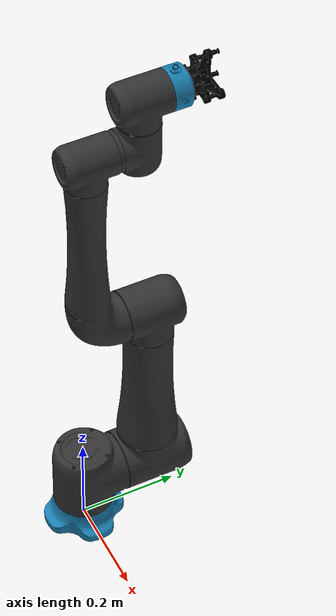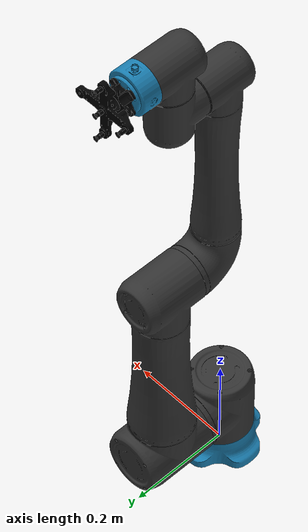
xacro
<?xml version="1.0"?>
<robot xmlns:xacro="http://wiki.ros.org/xacro" name="orion5">

   <xacro:include filename="$(find robot_description)/urdf/orion5_arm.xacro"/>
   <xacro:include filename="$(find robot_description)/urdf/gripper.xacro"/>
   <xacro:include filename="$(find robot_description)/urdf/transmissions.xacro"/>
   <xacro:include filename="$(find robot_description)/urdf/gazebo_control.xacro"/>

   <xacro:orion5_arm />
   <xacro:gripper />
   <xacro:transmissions />
   <xacro:gazebo_control />

</robot>

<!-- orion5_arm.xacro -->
<robot xmlns:xacro="http://wiki.ros.org/xacro">

  <xacro:macro name="orion5_arm">

    <material name="black">
      <color rgba="0.2 0.2 0.2 1.0"/>
    </material>
    <material name="gray">
      <color rgba="0.6 0.6 0.6 1.0"/>
    </material>
    <material name="blue">
      <color rgba="0.1 0.5 0.7 1.0"/>
    </material>

    <link name="world"/>

    <joint name="world_fixed_joint" type="fixed">
      <origin xyz="0.0 0.0 0.0" rpy="0 0 0" />
      <parent link="world" />
      <child link="base_link" />
    </joint>

    <link
    name="base_link">
    <inertial>
      <origin
        xyz="9.21255223397839E-07 -1.79280775157765E-06 0.024815226974079"
        rpy="0 0 0" />
      <mass
        value="0.769889098895433" />
      <inertia
        ixx="0.00118316322664961"
        ixy="1.14774534712335E-08"
        ixz="-2.43710987071992E-10"
        iyy="0.001183242751309"
        iyz="1.83744059910972E-10"
        izz="0.00198318001699658" />
    </inertial>
    <visual>
      <origin
        xyz="0 0 0"
        rpy="0 0 0" />
      <geometry>
        <mesh
          filename="package://robot_description/meshes/orion5/base_link.STL" />
      </geometry>
      <material
        name="blue"/>
    </visual>
    <collision>
      <origin
        xyz="0 0 0"
        rpy="0 0 0" />
      <geometry>
        <mesh
          filename="package://robot_description/meshes/orion5/base_link.STL" />
      </geometry>
    </collision>
  </link>
  <link
    name="L1">
    <inertial>
      <origin
        xyz="0.0103127600446312 2.12729023838594E-06 0.0644758348429013"
        rpy="0 0 0" />
      <mass
        value="4.7865392773478" />
      <inertia
        ixx="0.0101873519511181"
        ixy="-4.72148313658262E-09"
        ixz="-0.000588650779689266"
        iyy="0.0114905065233776"
        iyz="-2.06767262963085E-08"
        izz="0.0108370720789659" />
    </inertial>
    <visual>
      <origin
        xyz="0 0 0"
        rpy="0 0 0" />
      <geometry>
        <mesh
          filename="package://robot_description/meshes/orion5/L1.STL" />
      </geometry>
      <material
        name="black"/>
    </visual>
    <collision>
      <origin
        xyz="0 0 0"
        rpy="0 0 0" />
      <geometry>
        <mesh
          filename="package://robot_description/meshes/orion5/L1.STL" />
      </geometry>
    </collision>
  </link>
  <joint
    name="J1"
    type="revolute">
    <origin
      xyz="0 0 0.055"
      rpy="0 0 1.57" />
    <parent
      link="base_link" />
    <child
      link="L1" />
    <axis
      xyz="0 0 1" />
    <limit
      lower="-3.14"
      upper="3.14"
      effort="200"
      velocity="3.14" />
  </joint>
  <link
    name="L2">
    <inertial>
      <origin
        xyz="-2.59965993875612E-07 0.119821198591517 0.0651559418461157"
        rpy="0 0 0" />
      <mass
        value="8.30151552015886" />
      <inertia
        ixx="0.0328486452992198"
        ixy="1.03654727361315E-08"
        ixz="2.40742068996585E-08"
        iyy="0.0150283825082022"
        iyz="-0.000501441738539127"
        izz="0.032101333211442" />
    </inertial>
    <visual>
      <origin
        xyz="0 0 0"
        rpy="0 0 0" />
      <geometry>
        <mesh
          filename="package://robot_description/meshes/orion5/L2.STL" />
      </geometry>
      <material
        name="black"/>
    </visual>
    <collision>
      <origin
        xyz="0 0 0"
        rpy="0 0 0" />
      <geometry>
        <mesh
          filename="package://robot_description/meshes/orion5/L2.STL" />
      </geometry>
    </collision>
  </link>
  <joint
    name="J2"
    type="revolute">
    <origin
      xyz="0.076 0 0.066"
      rpy="1.5708 0 1.5708" />
    <parent
      link="L1" />
    <child
      link="L2" />
    <axis
      xyz="0 0 1" />
    <limit
      lower="-3.14"
      upper="3.14"
      effort="200"
      velocity="3.14" />
  </joint>
  <link
    name="L3">
    <inertial>
      <origin
        xyz="8.0156E-08 -0.13917 0.058933"
        rpy="0 0 0" />
      <mass
        value="4.1211" />
      <inertia
        ixx="0.017469"
        ixy="-6.5147E-10"
        ixz="1.0147E-08"
        iyy="0.0044278"
        iyz="0.00075596"
        izz="0.01684" />
    </inertial>
    <visual>
      <origin
        xyz="0 0 0"
        rpy="0 0 0" />
      <geometry>
        <mesh
          filename="package://robot_description/meshes/orion5/L3.STL" />
      </geometry>
      <material
        name="black"/>
    </visual>
    <collision>
      <origin
        xyz="0 0 0"
        rpy="0 0 0" />
      <geometry>
        <mesh
          filename="package://robot_description/meshes/orion5/L3.STL" />
      </geometry>
    </collision>
  </link>
  <joint
    name="J3"
    type="revolute">
    <origin
      xyz="0 0.421 0.01"
      rpy="3.1416 0 0" />
    <parent
      link="L2" />
    <child
      link="L3" />
    <axis
      xyz="0 0 1" />
    <limit
      lower="-3.14"
      upper="3.14"
      effort="200"
      velocity="3.14" />
  </joint>
  <link
    name="L4">
    <inertial>
      <origin
        xyz="-2.1724E-07 0.0023928 0.046823"
        rpy="0 0 0" />
      <mass
        value="0.54999" />
      <inertia
        ixx="0.00061299"
        ixy="-1.2312E-09"
        ixz="-4.5565E-09"
        iyy="0.00054583"
        iyz="-3.9716E-05"
        izz="0.00054518" />
    </inertial>
    <visual>
      <origin
        xyz="0 0 0"
        rpy="0 0 0" />
      <geometry>
        <mesh
          filename="package://robot_description/meshes/orion5/L4.STL" />
      </geometry>
      <material
        name="black"/>
    </visual>
    <collision>
      <origin
        xyz="0 0 0"
        rpy="0 0 0" />
      <geometry>
        <mesh
          filename="package://robot_description/meshes/orion5/L4.STL" />
      </geometry>
    </collision>
  </link>
  <joint
    name="J4"
    type="revolute">
    <origin
      xyz="0 -0.427 0.019"
      rpy="3.1416 0 0" />
    <parent
      link="L3" />
    <child
      link="L4" />
    <axis
      xyz="0 0 1" />
    <limit
      lower="-3.14"
      upper="3.14"
      effort="200"
      velocity="3.14" />
  </joint>
  <link
    name="L5">
    <inertial>
      <origin
        xyz="0.0023928 -2.1726E-07 -0.046823"
        rpy="0 0 0" />
      <mass
        value="0.54999" />
      <inertia
        ixx="0.00054583"
        ixy="-1.2312E-09"
        ixz="3.9716E-05"
        iyy="0.00061299"
        iyz="4.5567E-09"
        izz="0.00054518" />
    </inertial>
    <visual>
      <origin
        xyz="0 0 0"
        rpy="0 0 0" />
      <geometry>
        <mesh
          filename="package://robot_description/meshes/orion5/L5.STL" />
      </geometry>
      <material
        name="black"/>
    </visual>
    <collision>
      <origin
        xyz="0 0 0"
        rpy="0 0 0" />
      <geometry>
        <mesh
          filename="package://robot_description/meshes/orion5/L5.STL" />
      </geometry>
    </collision>
  </link>
  <joint
    name="J5"
    type="revolute">
    <origin
      xyz="0 0.051 0.053"
      rpy="1.5708 -1.5708 0" />
    <parent
      link="L4" />
    <child
      link="L5" />
    <axis
      xyz="0 0 1" />
    <limit
      lower="-3.14"
      upper="3.14"
      effort="200"
      velocity="3.14" />
  </joint>
  <link
    name="L6">
    <inertial>
      <origin
        xyz="-7.0636E-06 -0.00050194 0.018628"
        rpy="0 0 0" />
      <mass
        value="0.17983" />
      <inertia
        ixx="9.0912E-05"
        ixy="2.9828E-08"
        ixz="2.376E-08"
        iyy="9.1652E-05"
        iyz="-4.4464E-08"
        izz="0.00014028" />
    </inertial>
    <visual>
      <origin
        xyz="0 0 0"
        rpy="0 0 0" />
      <geometry>
        <mesh
          filename="package://robot_description/meshes/orion5/L6.STL" />
      </geometry>
      <material
        name="blue"/>
    </visual>
    <collision>
      <origin
        xyz="0 0 0"
        rpy="0 0 0" />
      <geometry>
        <mesh
          filename="package://robot_description/meshes/orion5/L6.STL" />
      </geometry>
    </collision>
  </link>
  <joint
    name="J6"
    type="revolute">
    <origin
      xyz="0.051 0 -0.053"
      rpy="-1.5708 0 -1.5708" />
    <parent
      link="L5" />
    <child
      link="L6" />
    <axis
      xyz="0 0 1" />
    <limit
      lower="-3.14"
      upper="3.14"
      effort="200"
      velocity="3.14" />
  </joint>

  </xacro:macro>
</robot>

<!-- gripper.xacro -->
<robot xmlns:xacro="http://wiki.ros.org/xacro">

  <xacro:macro name="gripper">

    <joint name="gripper_joint" type="fixed">
      <parent link="L6" />
      <child link="gripper_link" />
      <origin rpy="3.14 0 3.14" xyz="0 0 0.04" />
    </joint>

    <link name="gripper_link">
      <visual>
        <origin rpy="0 0 0" xyz="-0.06 -0.06 -0.06" />
        <geometry>
          <mesh filename="package://robot_description/meshes/gripper/vacuum.STL" scale="0.001 0.001 0.001"/>
        </geometry>
        <material name="black">
          <color rgba="0 0 0 1.0" />
        </material>
      </visual>
      <collision>
        <origin rpy="0 0 0" xyz="-0.06 -0.06 -0.06" />
        <geometry>
          <mesh filename="package://robot_description/meshes/gripper/vacuum.STL" scale="0.001 0.001 0.001"/>
        </geometry>
      </collision>
      <inertial>
        <mass value="2.0" />
        <origin rpy="0 0 0" xyz="0 0 0" />
        <inertia ixx="0.00443333156" ixy="0.0" ixz="0.0" iyy="0.00443333156" iyz="0.0" izz="0.0072" />
      </inertial>
    </link>

    <!-- TCP link -->
    <link name="tcp_link" />

    <joint name="tcp_joint" type="fixed">
      <parent link="gripper_link" />
      <child link="tcp_link" />
      <origin rpy="-3.14 0 0" xyz="0 0 -0.06" />
    </joint>

  </xacro:macro>
</robot>
